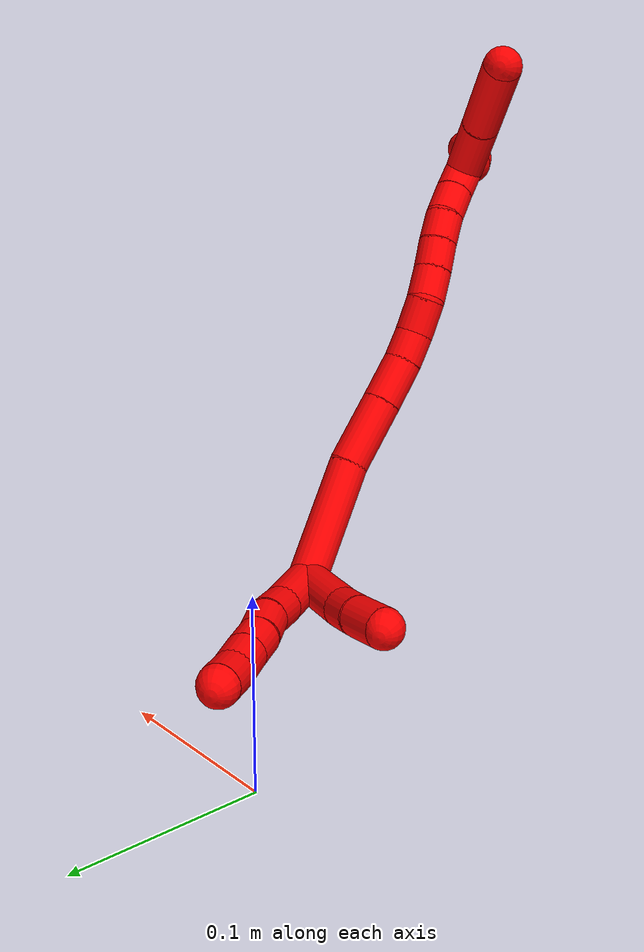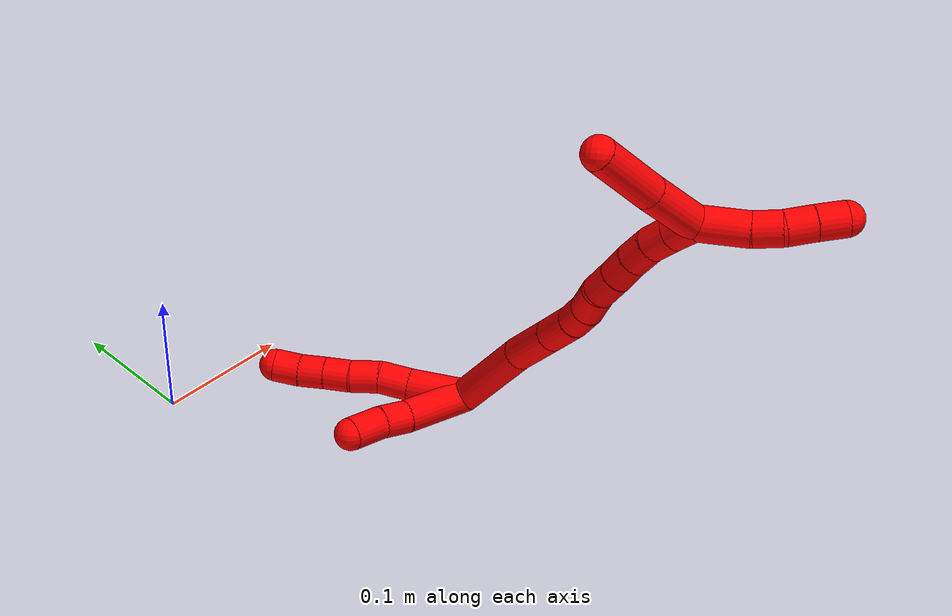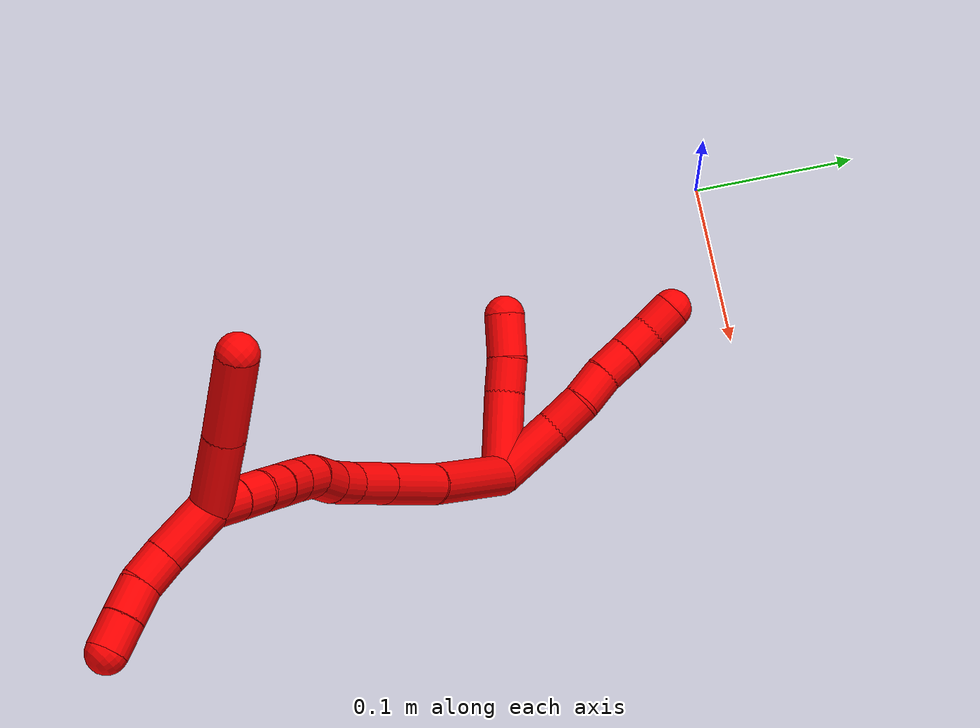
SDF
<sdf version="1.7">
 <world name="default">
  <model name="2">
   <static>0</static>
   <link name="2">
    <collision name="collision-cylinder-e_1_2_8">
     <pose>-0.001752 -0.000531 -0.021845 3.11728 -0.080015 -2.55191</pose>
     <geometry><cylinder><radius>0.0125</radius><length>0.043844</length></cylinder></geometry>
     <surface>
      <friction><ode><mu>1.16</mu><mu2>1.16</mu2><slip1>0</slip1><slip2>0</slip2></ode></friction>
      <contact><ode><kp>1e+06</kp><kd>1</kd><max_vel>0</max_vel><min_depth>0.001</min_depth></ode></contact>
     </surface>
    </collision>
    <visual name="visual-cylinder-e_1_2_8">
     <pose>-0.001752 -0.000531 -0.021845 3.11728 -0.080015 -2.55191</pose>
     <geometry><cylinder><radius>0.0125</radius><length>0.043844</length></cylinder></geometry>
     <material><ambient>1 0 0 1</ambient></material>
    </visual>
    <collision name="collision-cylinder-e_2_8_9">
     <pose>-0.004632 -0.002453 -0.055309 3.02251 -0.096045 -1.35702</pose>
     <geometry><cylinder><radius>0.0125</radius><length>0.023511</length></cylinder></geometry>
     <surface>
      <friction><ode><mu>1.16</mu><mu2>1.16</mu2><slip1>0</slip1><slip2>0</slip2></ode></friction>
      <contact><ode><kp>1e+06</kp><kd>1</kd><max_vel>0</max_vel><min_depth>0.001</min_depth></ode></contact>
     </surface>
    </collision>
    <visual name="visual-cylinder-e_2_8_9">
     <pose>-0.004632 -0.002453 -0.055309 3.02251 -0.096045 -1.35702</pose>
     <geometry><cylinder><radius>0.0125</radius><length>0.023511</length></cylinder></geometry>
     <material><ambient>1 0 0 1</ambient></material>
    </visual>
    <collision name="collision-cylinder-e_3_9_10">
     <pose>-0.004606 -0.004018 -0.078002 3.12574 0.10376 2.83863</pose>
     <geometry><cylinder><radius>0.0125</radius><length>0.022273</length></cylinder></geometry>
     <surface>
      <friction><ode><mu>1.16</mu><mu2>1.16</mu2><slip1>0</slip1><slip2>0</slip2></ode></friction>
      <contact><ode><kp>1e+06</kp><kd>1</kd><max_vel>0</max_vel><min_depth>0.001</min_depth></ode></contact>
     </surface>
    </collision>
    <visual name="visual-cylinder-e_3_9_10">
     <pose>-0.004606 -0.004018 -0.078002 3.12574 0.10376 2.83863</pose>
     <geometry><cylinder><radius>0.0125</radius><length>0.022273</length></cylinder></geometry>
     <material><ambient>1 0 0 1</ambient></material>
    </visual>
    <collision name="collision-cylinder-e_4_10_11">
     <pose>-0.00385 -0.003925 -0.099075 -3.1147 -0.03975 1.9522</pose>
     <geometry><cylinder><radius>0.0125</radius><length>0.020019</length></cylinder></geometry>
     <surface>
      <friction><ode><mu>1.16</mu><mu2>1.16</mu2><slip1>0</slip1><slip2>0</slip2></ode></friction>
      <contact><ode><kp>1e+06</kp><kd>1</kd><max_vel>0</max_vel><min_depth>0.001</min_depth></ode></contact>
     </surface>
    </collision>
    <visual name="visual-cylinder-e_4_10_11">
     <pose>-0.00385 -0.003925 -0.099075 -3.1147 -0.03975 1.9522</pose>
     <geometry><cylinder><radius>0.0125</radius><length>0.020019</length></cylinder></geometry>
     <material><ambient>1 0 0 1</ambient></material>
    </visual>
    <collision name="collision-cylinder-e_5_11_12">
     <pose>-0.004367 -0.0034 -0.119198 -3.11629 -0.011789 0.871964</pose>
     <geometry><cylinder><radius>0.0125</radius><length>0.020258</length></cylinder></geometry>
     <surface>
      <friction><ode><mu>1.16</mu><mu2>1.16</mu2><slip1>0</slip1><slip2>0</slip2></ode></friction>
      <contact><ode><kp>1e+06</kp><kd>1</kd><max_vel>0</max_vel><min_depth>0.001</min_depth></ode></contact>
     </surface>
    </collision>
    <visual name="visual-cylinder-e_5_11_12">
     <pose>-0.004367 -0.0034 -0.119198 -3.11629 -0.011789 0.871964</pose>
     <geometry><cylinder><radius>0.0125</radius><length>0.020258</length></cylinder></geometry>
     <material><ambient>1 0 0 1</ambient></material>
    </visual>
    <collision name="collision-cylinder-e_6_12_6">
     <pose>-0.005084 -0.004161 -0.139302 3.03995 -0.059514 -1.05887</pose>
     <geometry><cylinder><radius>0.0125</radius><length>0.020096</length></cylinder></geometry>
     <surface>
      <friction><ode><mu>1.16</mu><mu2>1.16</mu2><slip1>0</slip1><slip2>0</slip2></ode></friction>
      <contact><ode><kp>1e+06</kp><kd>1</kd><max_vel>0</max_vel><min_depth>0.001</min_depth></ode></contact>
     </surface>
    </collision>
    <visual name="visual-cylinder-e_6_12_6">
     <pose>-0.005084 -0.004161 -0.139302 3.03995 -0.059514 -1.05887</pose>
     <geometry><cylinder><radius>0.0125</radius><length>0.020096</length></cylinder></geometry>
     <material><ambient>1 0 0 1</ambient></material>
    </visual>
    <collision name="collision-cylinder-e_1_2_13">
     <pose>0.015598 -0.006624 -0.019203 2.80944 0.654854 2.22471</pose>
     <geometry><cylinder><radius>0.0125</radius><length>0.051222</length></cylinder></geometry>
     <surface>
      <friction><ode><mu>1.16</mu><mu2>1.16</mu2><slip1>0</slip1><slip2>0</slip2></ode></friction>
      <contact><ode><kp>1e+06</kp><kd>1</kd><max_vel>0</max_vel><min_depth>0.001</min_depth></ode></contact>
     </surface>
    </collision>
    <visual name="visual-cylinder-e_1_2_13">
     <pose>0.015598 -0.006624 -0.019203 2.80944 0.654854 2.22471</pose>
     <geometry><cylinder><radius>0.0125</radius><length>0.051222</length></cylinder></geometry>
     <material><ambient>1 0 0 1</ambient></material>
    </visual>
    <collision name="collision-cylinder-e_2_13_14">
     <pose>0.037052 -0.017273 -0.0467 2.68978 0.565881 1.80376</pose>
     <geometry><cylinder><radius>0.0125</radius><length>0.021843</length></cylinder></geometry>
     <surface>
      <friction><ode><mu>1.16</mu><mu2>1.16</mu2><slip1>0</slip1><slip2>0</slip2></ode></friction>
      <contact><ode><kp>1e+06</kp><kd>1</kd><max_vel>0</max_vel><min_depth>0.001</min_depth></ode></contact>
     </surface>
    </collision>
    <visual name="visual-cylinder-e_2_13_14">
     <pose>0.037052 -0.017273 -0.0467 2.68978 0.565881 1.80376</pose>
     <geometry><cylinder><radius>0.0125</radius><length>0.021843</length></cylinder></geometry>
     <material><ambient>1 0 0 1</ambient></material>
    </visual>
    <collision name="collision-cylinder-e_3_14_5">
     <pose>0.051721 -0.025979 -0.064037 2.66389 0.713355 1.98394</pose>
     <geometry><cylinder><radius>0.0125</radius><length>0.026934</length></cylinder></geometry>
     <surface>
      <friction><ode><mu>1.16</mu><mu2>1.16</mu2><slip1>0</slip1><slip2>0</slip2></ode></friction>
      <contact><ode><kp>1e+06</kp><kd>1</kd><max_vel>0</max_vel><min_depth>0.001</min_depth></ode></contact>
     </surface>
    </collision>
    <visual name="visual-cylinder-e_3_14_5">
     <pose>0.051721 -0.025979 -0.064037 2.66389 0.713355 1.98394</pose>
     <geometry><cylinder><radius>0.0125</radius><length>0.026934</length></cylinder></geometry>
     <material><ambient>1 0 0 1</ambient></material>
    </visual>
    <collision name="collision-cylinder-e_1_2_15">
     <pose>-0.002066 -0.031835 0.022512 0.955293 -0.052932 -0.027403</pose>
     <geometry><cylinder><radius>0.0125</radius><length>0.07809</length></cylinder></geometry>
     <surface>
      <friction><ode><mu>1.16</mu><mu2>1.16</mu2><slip1>0</slip1><slip2>0</slip2></ode></friction>
      <contact><ode><kp>1e+06</kp><kd>1</kd><max_vel>0</max_vel><min_depth>0.001</min_depth></ode></contact>
     </surface>
    </collision>
    <visual name="visual-cylinder-e_1_2_15">
     <pose>-0.002066 -0.031835 0.022512 0.955293 -0.052932 -0.027403</pose>
     <geometry><cylinder><radius>0.0125</radius><length>0.07809</length></cylinder></geometry>
     <material><ambient>1 0 0 1</ambient></material>
    </visual>
    <collision name="collision-cylinder-e_2_15_16">
     <pose>-0.002078 -0.082427 0.058102 0.961909 0.089543 0.046749</pose>
     <geometry><cylinder><radius>0.0125</radius><length>0.045917</length></cylinder></geometry>
     <surface>
      <friction><ode><mu>1.16</mu><mu2>1.16</mu2><slip1>0</slip1><slip2>0</slip2></ode></friction>
      <contact><ode><kp>1e+06</kp><kd>1</kd><max_vel>0</max_vel><min_depth>0.001</min_depth></ode></contact>
     </surface>
    </collision>
    <visual name="visual-cylinder-e_2_15_16">
     <pose>-0.002078 -0.082427 0.058102 0.961909 0.089543 0.046749</pose>
     <geometry><cylinder><radius>0.0125</radius><length>0.045917</length></cylinder></geometry>
     <material><ambient>1 0 0 1</ambient></material>
    </visual>
    <collision name="collision-cylinder-e_3_16_17">
     <pose>0.001174 -0.113667 0.079887 0.961832 0.078673 0.041065</pose>
     <geometry><cylinder><radius>0.0125</radius><length>0.030532</length></cylinder></geometry>
     <surface>
      <friction><ode><mu>1.16</mu><mu2>1.16</mu2><slip1>0</slip1><slip2>0</slip2></ode></friction>
      <contact><ode><kp>1e+06</kp><kd>1</kd><max_vel>0</max_vel><min_depth>0.001</min_depth></ode></contact>
     </surface>
    </collision>
    <visual name="visual-cylinder-e_3_16_17">
     <pose>0.001174 -0.113667 0.079887 0.961832 0.078673 0.041065</pose>
     <geometry><cylinder><radius>0.0125</radius><length>0.030532</length></cylinder></geometry>
     <material><ambient>1 0 0 1</ambient></material>
    </visual>
    <collision name="collision-cylinder-e_4_17_18">
     <pose>0.002384 -0.134896 0.093623 1.04876 0.001001 0.000579</pose>
     <geometry><cylinder><radius>0.0125</radius><length>0.02018</length></cylinder></geometry>
     <surface>
      <friction><ode><mu>1.16</mu><mu2>1.16</mu2><slip1>0</slip1><slip2>0</slip2></ode></friction>
      <contact><ode><kp>1e+06</kp><kd>1</kd><max_vel>0</max_vel><min_depth>0.001</min_depth></ode></contact>
     </surface>
    </collision>
    <visual name="visual-cylinder-e_4_17_18">
     <pose>0.002384 -0.134896 0.093623 1.04876 0.001001 0.000579</pose>
     <geometry><cylinder><radius>0.0125</radius><length>0.02018</length></cylinder></geometry>
     <material><ambient>1 0 0 1</ambient></material>
    </visual>
    <collision name="collision-cylinder-e_5_18_19">
     <pose>0.001974 -0.154645 0.102856 1.20602 -0.035704 -0.024586</pose>
     <geometry><cylinder><radius>0.0125</radius><length>0.02357</length></cylinder></geometry>
     <surface>
      <friction><ode><mu>1.16</mu><mu2>1.16</mu2><slip1>0</slip1><slip2>0</slip2></ode></friction>
      <contact><ode><kp>1e+06</kp><kd>1</kd><max_vel>0</max_vel><min_depth>0.001</min_depth></ode></contact>
     </surface>
    </collision>
    <visual name="visual-cylinder-e_5_18_19">
     <pose>0.001974 -0.154645 0.102856 1.20602 -0.035704 -0.024586</pose>
     <geometry><cylinder><radius>0.0125</radius><length>0.02357</length></cylinder></geometry>
     <material><ambient>1 0 0 1</ambient></material>
    </visual>
    <collision name="collision-cylinder-e_6_19_20">
     <pose>-0.000112 -0.174126 0.113039 0.956473 -0.159098 -0.082599</pose>
     <geometry><cylinder><radius>0.0125</radius><length>0.021018</length></cylinder></geometry>
     <surface>
      <friction><ode><mu>1.16</mu><mu2>1.16</mu2><slip1>0</slip1><slip2>0</slip2></ode></friction>
      <contact><ode><kp>1e+06</kp><kd>1</kd><max_vel>0</max_vel><min_depth>0.001</min_depth></ode></contact>
     </surface>
    </collision>
    <visual name="visual-cylinder-e_6_19_20">
     <pose>-0.000112 -0.174126 0.113039 0.956473 -0.159098 -0.082599</pose>
     <geometry><cylinder><radius>0.0125</radius><length>0.021018</length></cylinder></geometry>
     <material><ambient>1 0 0 1</ambient></material>
    </visual>
    <collision name="collision-cylinder-e_7_20_21">
     <pose>-0.003779 -0.190749 0.124626 0.967796 -0.199766 -0.105246</pose>
     <geometry><cylinder><radius>0.0125</radius><length>0.020175</length></cylinder></geometry>
     <surface>
      <friction><ode><mu>1.16</mu><mu2>1.16</mu2><slip1>0</slip1><slip2>0</slip2></ode></friction>
      <contact><ode><kp>1e+06</kp><kd>1</kd><max_vel>0</max_vel><min_depth>0.001</min_depth></ode></contact>
     </surface>
    </collision>
    <visual name="visual-cylinder-e_7_20_21">
     <pose>-0.003779 -0.190749 0.124626 0.967796 -0.199766 -0.105246</pose>
     <geometry><cylinder><radius>0.0125</radius><length>0.020175</length></cylinder></geometry>
     <material><ambient>1 0 0 1</ambient></material>
    </visual>
    <collision name="collision-cylinder-e_8_21_22">
     <pose>-0.007274 -0.206778 0.136251 0.918954 -0.149455 -0.074054</pose>
     <geometry><cylinder><radius>0.0125</radius><length>0.020062</length></cylinder></geometry>
     <surface>
      <friction><ode><mu>1.16</mu><mu2>1.16</mu2><slip1>0</slip1><slip2>0</slip2></ode></friction>
      <contact><ode><kp>1e+06</kp><kd>1</kd><max_vel>0</max_vel><min_depth>0.001</min_depth></ode></contact>
     </surface>
    </collision>
    <visual name="visual-cylinder-e_8_21_22">
     <pose>-0.007274 -0.206778 0.136251 0.918954 -0.149455 -0.074054</pose>
     <geometry><cylinder><radius>0.0125</radius><length>0.020062</length></cylinder></geometry>
     <material><ambient>1 0 0 1</ambient></material>
    </visual>
    <collision name="collision-cylinder-e_9_22_23">
     <pose>-0.009222 -0.221762 0.149406 0.782645 -0.045072 -0.018599</pose>
     <geometry><cylinder><radius>0.0125</radius><length>0.020154</length></cylinder></geometry>
     <surface>
      <friction><ode><mu>1.16</mu><mu2>1.16</mu2><slip1>0</slip1><slip2>0</slip2></ode></friction>
      <contact><ode><kp>1e+06</kp><kd>1</kd><max_vel>0</max_vel><min_depth>0.001</min_depth></ode></contact>
     </surface>
    </collision>
    <visual name="visual-cylinder-e_9_22_23">
     <pose>-0.009222 -0.221762 0.149406 0.782645 -0.045072 -0.018599</pose>
     <geometry><cylinder><radius>0.0125</radius><length>0.020154</length></cylinder></geometry>
     <material><ambient>1 0 0 1</ambient></material>
    </visual>
    <collision name="collision-cylinder-e_10_23_1">
     <pose>-0.009798 -0.235895 0.163862 0.765702 -0.012098 -0.004872</pose>
     <geometry><cylinder><radius>0.0125</radius><length>0.020302</length></cylinder></geometry>
     <surface>
      <friction><ode><mu>1.16</mu><mu2>1.16</mu2><slip1>0</slip1><slip2>0</slip2></ode></friction>
      <contact><ode><kp>1e+06</kp><kd>1</kd><max_vel>0</max_vel><min_depth>0.001</min_depth></ode></contact>
     </surface>
    </collision>
    <visual name="visual-cylinder-e_10_23_1">
     <pose>-0.009798 -0.235895 0.163862 0.765702 -0.012098 -0.004872</pose>
     <geometry><cylinder><radius>0.0125</radius><length>0.020302</length></cylinder></geometry>
     <material><ambient>1 0 0 1</ambient></material>
    </visual>
    <collision name="collision-cylinder-e_1_1_24">
     <pose>-0.007551 -0.261358 0.156797 2.23345 0.101033 0.206439</pose>
     <geometry><cylinder><radius>0.0125</radius><length>0.046992</length></cylinder></geometry>
     <surface>
      <friction><ode><mu>1.16</mu><mu2>1.16</mu2><slip1>0</slip1><slip2>0</slip2></ode></friction>
      <contact><ode><kp>1e+06</kp><kd>1</kd><max_vel>0</max_vel><min_depth>0.001</min_depth></ode></contact>
     </surface>
    </collision>
    <visual name="visual-cylinder-e_1_1_24">
     <pose>-0.007551 -0.261358 0.156797 2.23345 0.101033 0.206439</pose>
     <geometry><cylinder><radius>0.0125</radius><length>0.046992</length></cylinder></geometry>
     <material><ambient>1 0 0 1</ambient></material>
    </visual>
    <collision name="collision-cylinder-e_2_24_4">
     <pose>-0.002702 -0.301248 0.127062 2.1918 0.093704 0.181884</pose>
     <geometry><cylinder><radius>0.0125</radius><length>0.053008</length></cylinder></geometry>
     <surface>
      <friction><ode><mu>1.16</mu><mu2>1.16</mu2><slip1>0</slip1><slip2>0</slip2></ode></friction>
      <contact><ode><kp>1e+06</kp><kd>1</kd><max_vel>0</max_vel><min_depth>0.001</min_depth></ode></contact>
     </surface>
    </collision>
    <visual name="visual-cylinder-e_2_24_4">
     <pose>-0.002702 -0.301248 0.127062 2.1918 0.093704 0.181884</pose>
     <geometry><cylinder><radius>0.0125</radius><length>0.053008</length></cylinder></geometry>
     <material><ambient>1 0 0 1</ambient></material>
    </visual>
    <collision name="collision-cylinder-e_1_1_25">
     <pose>-0.010038 -0.241999 0.18966 -0.050267 -0.006328 0.000159</pose>
     <geometry><cylinder><radius>0.0125</radius><length>0.037011</length></cylinder></geometry>
     <surface>
      <friction><ode><mu>1.16</mu><mu2>1.16</mu2><slip1>0</slip1><slip2>0</slip2></ode></friction>
      <contact><ode><kp>1e+06</kp><kd>1</kd><max_vel>0</max_vel><min_depth>0.001</min_depth></ode></contact>
     </surface>
    </collision>
    <visual name="visual-cylinder-e_1_1_25">
     <pose>-0.010038 -0.241999 0.18966 -0.050267 -0.006328 0.000159</pose>
     <geometry><cylinder><radius>0.0125</radius><length>0.037011</length></cylinder></geometry>
     <material><ambient>1 0 0 1</ambient></material>
    </visual>
    <collision name="collision-cylinder-e_2_25_26">
     <pose>-0.011488 -0.241533 0.218452 0.044897 -0.1284 -0.002887</pose>
     <geometry><cylinder><radius>0.0125</radius><length>0.020812</length></cylinder></geometry>
     <surface>
      <friction><ode><mu>1.16</mu><mu2>1.16</mu2><slip1>0</slip1><slip2>0</slip2></ode></friction>
      <contact><ode><kp>1e+06</kp><kd>1</kd><max_vel>0</max_vel><min_depth>0.001</min_depth></ode></contact>
     </surface>
    </collision>
    <visual name="visual-cylinder-e_2_25_26">
     <pose>-0.011488 -0.241533 0.218452 0.044897 -0.1284 -0.002887</pose>
     <geometry><cylinder><radius>0.0125</radius><length>0.020812</length></cylinder></geometry>
     <material><ambient>1 0 0 1</ambient></material>
    </visual>
    <collision name="collision-cylinder-e_3_26_27">
     <pose>-0.016297 -0.241609 0.238627 -0.039205 -0.33863 0.006703</pose>
     <geometry><cylinder><radius>0.0125</radius><length>0.020934</length></cylinder></geometry>
     <surface>
      <friction><ode><mu>1.16</mu><mu2>1.16</mu2><slip1>0</slip1><slip2>0</slip2></ode></friction>
      <contact><ode><kp>1e+06</kp><kd>1</kd><max_vel>0</max_vel><min_depth>0.001</min_depth></ode></contact>
     </surface>
    </collision>
    <visual name="visual-cylinder-e_3_26_27">
     <pose>-0.016297 -0.241609 0.238627 -0.039205 -0.33863 0.006703</pose>
     <geometry><cylinder><radius>0.0125</radius><length>0.020934</length></cylinder></geometry>
     <material><ambient>1 0 0 1</ambient></material>
    </visual>
    <collision name="collision-cylinder-e_4_27_3">
     <pose>-0.023259 -0.240358 0.258488 -0.086268 -0.334269 0.014563</pose>
     <geometry><cylinder><radius>0.0125</radius><length>0.021243</length></cylinder></geometry>
     <surface>
      <friction><ode><mu>1.16</mu><mu2>1.16</mu2><slip1>0</slip1><slip2>0</slip2></ode></friction>
      <contact><ode><kp>1e+06</kp><kd>1</kd><max_vel>0</max_vel><min_depth>0.001</min_depth></ode></contact>
     </surface>
    </collision>
    <visual name="visual-cylinder-e_4_27_3">
     <pose>-0.023259 -0.240358 0.258488 -0.086268 -0.334269 0.014563</pose>
     <geometry><cylinder><radius>0.0125</radius><length>0.021243</length></cylinder></geometry>
     <material><ambient>1 0 0 1</ambient></material>
    </visual>
    <collision name="collision-sphere-3">
     <pose>-0.026744 -0.239493 0.268485 0 -0 0</pose>
     <geometry><sphere><radius>0.0125</radius></sphere></geometry>
     <surface>
      <friction><ode><mu>1.16</mu><mu2>1.16</mu2><slip1>0</slip1><slip2>0</slip2></ode></friction>
      <contact><ode><kp>1e+06</kp><kd>1</kd><max_vel>0</max_vel><min_depth>0.001</min_depth></ode></contact>
     </surface>
    </collision>
    <visual name="visual-sphere-3">
     <pose>-0.026744 -0.239493 0.268485 0 -0 0</pose>
     <geometry><sphere><radius>0.0125</radius></sphere></geometry>
     <material><ambient>1 0 0 1</ambient></material>
    </visual>
    <collision name="collision-sphere-27">
     <pose>-0.019775 -0.241222 0.248492 0 -0 0</pose>
     <geometry><sphere><radius>0.0125</radius></sphere></geometry>
     <surface>
      <friction><ode><mu>1.16</mu><mu2>1.16</mu2><slip1>0</slip1><slip2>0</slip2></ode></friction>
      <contact><ode><kp>1e+06</kp><kd>1</kd><max_vel>0</max_vel><min_depth>0.001</min_depth></ode></contact>
     </surface>
    </collision>
    <visual name="visual-sphere-27">
     <pose>-0.019775 -0.241222 0.248492 0 -0 0</pose>
     <geometry><sphere><radius>0.0125</radius></sphere></geometry>
     <material><ambient>1 0 0 1</ambient></material>
    </visual>
    <collision name="collision-sphere-26">
     <pose>-0.01282 -0.241996 0.228762 0 -0 0</pose>
     <geometry><sphere><radius>0.0125</radius></sphere></geometry>
     <surface>
      <friction><ode><mu>1.16</mu><mu2>1.16</mu2><slip1>0</slip1><slip2>0</slip2></ode></friction>
      <contact><ode><kp>1e+06</kp><kd>1</kd><max_vel>0</max_vel><min_depth>0.001</min_depth></ode></contact>
     </surface>
    </collision>
    <visual name="visual-sphere-26">
     <pose>-0.01282 -0.241996 0.228762 0 -0 0</pose>
     <geometry><sphere><radius>0.0125</radius></sphere></geometry>
     <material><ambient>1 0 0 1</ambient></material>
    </visual>
    <collision name="collision-sphere-25">
     <pose>-0.010155 -0.24107 0.208142 0 -0 0</pose>
     <geometry><sphere><radius>0.0125</radius></sphere></geometry>
     <surface>
      <friction><ode><mu>1.16</mu><mu2>1.16</mu2><slip1>0</slip1><slip2>0</slip2></ode></friction>
      <contact><ode><kp>1e+06</kp><kd>1</kd><max_vel>0</max_vel><min_depth>0.001</min_depth></ode></contact>
     </surface>
    </collision>
    <visual name="visual-sphere-25">
     <pose>-0.010155 -0.24107 0.208142 0 -0 0</pose>
     <geometry><sphere><radius>0.0125</radius></sphere></geometry>
     <material><ambient>1 0 0 1</ambient></material>
    </visual>
    <collision name="collision-sphere-4">
     <pose>-0.000222 -0.322709 0.111709 0 -0 0</pose>
     <geometry><sphere><radius>0.0125</radius></sphere></geometry>
     <surface>
      <friction><ode><mu>1.16</mu><mu2>1.16</mu2><slip1>0</slip1><slip2>0</slip2></ode></friction>
      <contact><ode><kp>1e+06</kp><kd>1</kd><max_vel>0</max_vel><min_depth>0.001</min_depth></ode></contact>
     </surface>
    </collision>
    <visual name="visual-sphere-4">
     <pose>-0.000222 -0.322709 0.111709 0 -0 0</pose>
     <geometry><sphere><radius>0.0125</radius></sphere></geometry>
     <material><ambient>1 0 0 1</ambient></material>
    </visual>
    <collision name="collision-sphere-24">
     <pose>-0.005182 -0.279787 0.142416 0 -0 0</pose>
     <geometry><sphere><radius>0.0125</radius></sphere></geometry>
     <surface>
      <friction><ode><mu>1.16</mu><mu2>1.16</mu2><slip1>0</slip1><slip2>0</slip2></ode></friction>
      <contact><ode><kp>1e+06</kp><kd>1</kd><max_vel>0</max_vel><min_depth>0.001</min_depth></ode></contact>
     </surface>
    </collision>
    <visual name="visual-sphere-24">
     <pose>-0.005182 -0.279787 0.142416 0 -0 0</pose>
     <geometry><sphere><radius>0.0125</radius></sphere></geometry>
     <material><ambient>1 0 0 1</ambient></material>
    </visual>
    <collision name="collision-sphere-1">
     <pose>-0.009921 -0.242929 0.171179 0 -0 0</pose>
     <geometry><sphere><radius>0.0125</radius></sphere></geometry>
     <surface>
      <friction><ode><mu>1.16</mu><mu2>1.16</mu2><slip1>0</slip1><slip2>0</slip2></ode></friction>
      <contact><ode><kp>1e+06</kp><kd>1</kd><max_vel>0</max_vel><min_depth>0.001</min_depth></ode></contact>
     </surface>
    </collision>
    <visual name="visual-sphere-1">
     <pose>-0.009921 -0.242929 0.171179 0 -0 0</pose>
     <geometry><sphere><radius>0.0125</radius></sphere></geometry>
     <material><ambient>1 0 0 1</ambient></material>
    </visual>
    <collision name="collision-sphere-23">
     <pose>-0.009676 -0.22886 0.156544 0 -0 0</pose>
     <geometry><sphere><radius>0.0125</radius></sphere></geometry>
     <surface>
      <friction><ode><mu>1.16</mu><mu2>1.16</mu2><slip1>0</slip1><slip2>0</slip2></ode></friction>
      <contact><ode><kp>1e+06</kp><kd>1</kd><max_vel>0</max_vel><min_depth>0.001</min_depth></ode></contact>
     </surface>
    </collision>
    <visual name="visual-sphere-23">
     <pose>-0.009676 -0.22886 0.156544 0 -0 0</pose>
     <geometry><sphere><radius>0.0125</radius></sphere></geometry>
     <material><ambient>1 0 0 1</ambient></material>
    </visual>
    <collision name="collision-sphere-22">
     <pose>-0.008768 -0.214663 0.142269 0 -0 0</pose>
     <geometry><sphere><radius>0.0125</radius></sphere></geometry>
     <surface>
      <friction><ode><mu>1.16</mu><mu2>1.16</mu2><slip1>0</slip1><slip2>0</slip2></ode></friction>
      <contact><ode><kp>1e+06</kp><kd>1</kd><max_vel>0</max_vel><min_depth>0.001</min_depth></ode></contact>
     </surface>
    </collision>
    <visual name="visual-sphere-22">
     <pose>-0.008768 -0.214663 0.142269 0 -0 0</pose>
     <geometry><sphere><radius>0.0125</radius></sphere></geometry>
     <material><ambient>1 0 0 1</ambient></material>
    </visual>
    <collision name="collision-sphere-21">
     <pose>-0.00578 -0.198892 0.130234 0 -0 0</pose>
     <geometry><sphere><radius>0.0125</radius></sphere></geometry>
     <surface>
      <friction><ode><mu>1.16</mu><mu2>1.16</mu2><slip1>0</slip1><slip2>0</slip2></ode></friction>
      <contact><ode><kp>1e+06</kp><kd>1</kd><max_vel>0</max_vel><min_depth>0.001</min_depth></ode></contact>
     </surface>
    </collision>
    <visual name="visual-sphere-21">
     <pose>-0.00578 -0.198892 0.130234 0 -0 0</pose>
     <geometry><sphere><radius>0.0125</radius></sphere></geometry>
     <material><ambient>1 0 0 1</ambient></material>
    </visual>
    <collision name="collision-sphere-12">
     <pose>-0.004487 -0.003144 -0.129323 0 -0 0</pose>
     <geometry><sphere><radius>0.0125</radius></sphere></geometry>
     <surface>
      <friction><ode><mu>1.16</mu><mu2>1.16</mu2><slip1>0</slip1><slip2>0</slip2></ode></friction>
      <contact><ode><kp>1e+06</kp><kd>1</kd><max_vel>0</max_vel><min_depth>0.001</min_depth></ode></contact>
     </surface>
    </collision>
    <visual name="visual-sphere-12">
     <pose>-0.004487 -0.003144 -0.129323 0 -0 0</pose>
     <geometry><sphere><radius>0.0125</radius></sphere></geometry>
     <material><ambient>1 0 0 1</ambient></material>
    </visual>
    <collision name="collision-sphere-11">
     <pose>-0.004248 -0.003656 -0.109073 0 -0 0</pose>
     <geometry><sphere><radius>0.0125</radius></sphere></geometry>
     <surface>
      <friction><ode><mu>1.16</mu><mu2>1.16</mu2><slip1>0</slip1><slip2>0</slip2></ode></friction>
      <contact><ode><kp>1e+06</kp><kd>1</kd><max_vel>0</max_vel><min_depth>0.001</min_depth></ode></contact>
     </surface>
    </collision>
    <visual name="visual-sphere-11">
     <pose>-0.004248 -0.003656 -0.109073 0 -0 0</pose>
     <geometry><sphere><radius>0.0125</radius></sphere></geometry>
     <material><ambient>1 0 0 1</ambient></material>
    </visual>
    <collision name="collision-sphere-10">
     <pose>-0.003452 -0.004194 -0.089077 0 -0 0</pose>
     <geometry><sphere><radius>0.0125</radius></sphere></geometry>
     <surface>
      <friction><ode><mu>1.16</mu><mu2>1.16</mu2><slip1>0</slip1><slip2>0</slip2></ode></friction>
      <contact><ode><kp>1e+06</kp><kd>1</kd><max_vel>0</max_vel><min_depth>0.001</min_depth></ode></contact>
     </surface>
    </collision>
    <visual name="visual-sphere-10">
     <pose>-0.003452 -0.004194 -0.089077 0 -0 0</pose>
     <geometry><sphere><radius>0.0125</radius></sphere></geometry>
     <material><ambient>1 0 0 1</ambient></material>
    </visual>
    <collision name="collision-sphere-9">
     <pose>-0.005759 -0.003843 -0.066927 0 -0 0</pose>
     <geometry><sphere><radius>0.0125</radius></sphere></geometry>
     <surface>
      <friction><ode><mu>1.16</mu><mu2>1.16</mu2><slip1>0</slip1><slip2>0</slip2></ode></friction>
      <contact><ode><kp>1e+06</kp><kd>1</kd><max_vel>0</max_vel><min_depth>0.001</min_depth></ode></contact>
     </surface>
    </collision>
    <visual name="visual-sphere-9">
     <pose>-0.005759 -0.003843 -0.066927 0 -0 0</pose>
     <geometry><sphere><radius>0.0125</radius></sphere></geometry>
     <material><ambient>1 0 0 1</ambient></material>
    </visual>
    <collision name="collision-sphere-2">
     <geometry><sphere><radius>0.0125</radius></sphere></geometry>
     <surface>
      <friction><ode><mu>1.16</mu><mu2>1.16</mu2><slip1>0</slip1><slip2>0</slip2></ode></friction>
      <contact><ode><kp>1e+06</kp><kd>1</kd><max_vel>0</max_vel><min_depth>0.001</min_depth></ode></contact>
     </surface>
    </collision>
    <visual name="visual-sphere-2">
     <geometry><sphere><radius>0.0125</radius></sphere></geometry>
     <material><ambient>1 0 0 1</ambient></material>
    </visual>
    <collision name="collision-sphere-19">
     <pose>0.001553 -0.165647 0.107058 0 -0 0</pose>
     <geometry><sphere><radius>0.0125</radius></sphere></geometry>
     <surface>
      <friction><ode><mu>1.16</mu><mu2>1.16</mu2><slip1>0</slip1><slip2>0</slip2></ode></friction>
      <contact><ode><kp>1e+06</kp><kd>1</kd><max_vel>0</max_vel><min_depth>0.001</min_depth></ode></contact>
     </surface>
    </collision>
    <visual name="visual-sphere-19">
     <pose>0.001553 -0.165647 0.107058 0 -0 0</pose>
     <geometry><sphere><radius>0.0125</radius></sphere></geometry>
     <material><ambient>1 0 0 1</ambient></material>
    </visual>
    <collision name="collision-sphere-8">
     <pose>-0.003504 -0.001062 -0.043691 0 -0 0</pose>
     <geometry><sphere><radius>0.0125</radius></sphere></geometry>
     <surface>
      <friction><ode><mu>1.16</mu><mu2>1.16</mu2><slip1>0</slip1><slip2>0</slip2></ode></friction>
      <contact><ode><kp>1e+06</kp><kd>1</kd><max_vel>0</max_vel><min_depth>0.001</min_depth></ode></contact>
     </surface>
    </collision>
    <visual name="visual-sphere-8">
     <pose>-0.003504 -0.001062 -0.043691 0 -0 0</pose>
     <geometry><sphere><radius>0.0125</radius></sphere></geometry>
     <material><ambient>1 0 0 1</ambient></material>
    </visual>
    <collision name="collision-sphere-6">
     <pose>-0.005682 -0.005179 -0.14928 0 -0 0</pose>
     <geometry><sphere><radius>0.0125</radius></sphere></geometry>
     <surface>
      <friction><ode><mu>1.16</mu><mu2>1.16</mu2><slip1>0</slip1><slip2>0</slip2></ode></friction>
      <contact><ode><kp>1e+06</kp><kd>1</kd><max_vel>0</max_vel><min_depth>0.001</min_depth></ode></contact>
     </surface>
    </collision>
    <visual name="visual-sphere-6">
     <pose>-0.005682 -0.005179 -0.14928 0 -0 0</pose>
     <geometry><sphere><radius>0.0125</radius></sphere></geometry>
     <material><ambient>1 0 0 1</ambient></material>
    </visual>
    <collision name="collision-sphere-13">
     <pose>0.031197 -0.013248 -0.038406 0 -0 0</pose>
     <geometry><sphere><radius>0.0125</radius></sphere></geometry>
     <surface>
      <friction><ode><mu>1.16</mu><mu2>1.16</mu2><slip1>0</slip1><slip2>0</slip2></ode></friction>
      <contact><ode><kp>1e+06</kp><kd>1</kd><max_vel>0</max_vel><min_depth>0.001</min_depth></ode></contact>
     </surface>
    </collision>
    <visual name="visual-sphere-13">
     <pose>0.031197 -0.013248 -0.038406 0 -0 0</pose>
     <geometry><sphere><radius>0.0125</radius></sphere></geometry>
     <material><ambient>1 0 0 1</ambient></material>
    </visual>
    <collision name="collision-sphere-14">
     <pose>0.042908 -0.021298 -0.054994 0 -0 0</pose>
     <geometry><sphere><radius>0.0125</radius></sphere></geometry>
     <surface>
      <friction><ode><mu>1.16</mu><mu2>1.16</mu2><slip1>0</slip1><slip2>0</slip2></ode></friction>
      <contact><ode><kp>1e+06</kp><kd>1</kd><max_vel>0</max_vel><min_depth>0.001</min_depth></ode></contact>
     </surface>
    </collision>
    <visual name="visual-sphere-14">
     <pose>0.042908 -0.021298 -0.054994 0 -0 0</pose>
     <geometry><sphere><radius>0.0125</radius></sphere></geometry>
     <material><ambient>1 0 0 1</ambient></material>
    </visual>
    <collision name="collision-sphere-5">
     <pose>0.060533 -0.030661 -0.073081 0 -0 0</pose>
     <geometry><sphere><radius>0.0125</radius></sphere></geometry>
     <surface>
      <friction><ode><mu>1.16</mu><mu2>1.16</mu2><slip1>0</slip1><slip2>0</slip2></ode></friction>
      <contact><ode><kp>1e+06</kp><kd>1</kd><max_vel>0</max_vel><min_depth>0.001</min_depth></ode></contact>
     </surface>
    </collision>
    <visual name="visual-sphere-5">
     <pose>0.060533 -0.030661 -0.073081 0 -0 0</pose>
     <geometry><sphere><radius>0.0125</radius></sphere></geometry>
     <material><ambient>1 0 0 1</ambient></material>
    </visual>
    <collision name="collision-sphere-15">
     <pose>-0.004132 -0.06367 0.045023 0 -0 0</pose>
     <geometry><sphere><radius>0.0125</radius></sphere></geometry>
     <surface>
      <friction><ode><mu>1.16</mu><mu2>1.16</mu2><slip1>0</slip1><slip2>0</slip2></ode></friction>
      <contact><ode><kp>1e+06</kp><kd>1</kd><max_vel>0</max_vel><min_depth>0.001</min_depth></ode></contact>
     </surface>
    </collision>
    <visual name="visual-sphere-15">
     <pose>-0.004132 -0.06367 0.045023 0 -0 0</pose>
     <geometry><sphere><radius>0.0125</radius></sphere></geometry>
     <material><ambient>1 0 0 1</ambient></material>
    </visual>
    <collision name="collision-sphere-16">
     <pose>-2.5e-05 -0.101184 0.071181 0 -0 0</pose>
     <geometry><sphere><radius>0.0125</radius></sphere></geometry>
     <surface>
      <friction><ode><mu>1.16</mu><mu2>1.16</mu2><slip1>0</slip1><slip2>0</slip2></ode></friction>
      <contact><ode><kp>1e+06</kp><kd>1</kd><max_vel>0</max_vel><min_depth>0.001</min_depth></ode></contact>
     </surface>
    </collision>
    <visual name="visual-sphere-16">
     <pose>-2.5e-05 -0.101184 0.071181 0 -0 0</pose>
     <geometry><sphere><radius>0.0125</radius></sphere></geometry>
     <material><ambient>1 0 0 1</ambient></material>
    </visual>
    <collision name="collision-sphere-17">
     <pose>0.002374 -0.126151 0.088592 0 -0 0</pose>
     <geometry><sphere><radius>0.0125</radius></sphere></geometry>
     <surface>
      <friction><ode><mu>1.16</mu><mu2>1.16</mu2><slip1>0</slip1><slip2>0</slip2></ode></friction>
      <contact><ode><kp>1e+06</kp><kd>1</kd><max_vel>0</max_vel><min_depth>0.001</min_depth></ode></contact>
     </surface>
    </collision>
    <visual name="visual-sphere-17">
     <pose>0.002374 -0.126151 0.088592 0 -0 0</pose>
     <geometry><sphere><radius>0.0125</radius></sphere></geometry>
     <material><ambient>1 0 0 1</ambient></material>
    </visual>
    <collision name="collision-sphere-18">
     <pose>0.002394 -0.143642 0.098655 0 -0 0</pose>
     <geometry><sphere><radius>0.0125</radius></sphere></geometry>
     <surface>
      <friction><ode><mu>1.16</mu><mu2>1.16</mu2><slip1>0</slip1><slip2>0</slip2></ode></friction>
      <contact><ode><kp>1e+06</kp><kd>1</kd><max_vel>0</max_vel><min_depth>0.001</min_depth></ode></contact>
     </surface>
    </collision>
    <visual name="visual-sphere-18">
     <pose>0.002394 -0.143642 0.098655 0 -0 0</pose>
     <geometry><sphere><radius>0.0125</radius></sphere></geometry>
     <material><ambient>1 0 0 1</ambient></material>
    </visual>
    <collision name="collision-sphere-20">
     <pose>-0.001777 -0.182605 0.119019 0 -0 0</pose>
     <geometry><sphere><radius>0.0125</radius></sphere></geometry>
     <surface>
      <friction><ode><mu>1.16</mu><mu2>1.16</mu2><slip1>0</slip1><slip2>0</slip2></ode></friction>
      <contact><ode><kp>1e+06</kp><kd>1</kd><max_vel>0</max_vel><min_depth>0.001</min_depth></ode></contact>
     </surface>
    </collision>
    <visual name="visual-sphere-20">
     <pose>-0.001777 -0.182605 0.119019 0 -0 0</pose>
     <geometry><sphere><radius>0.0125</radius></sphere></geometry>
     <material><ambient>1 0 0 1</ambient></material>
    </visual>
    <inertial>
     <pose>-0.000312 -0.121652 0.061833 0 -0 0</pose>
     <mass>0.75</mass>
     <inertia><ixx>0.0001</ixx><ixy>0</ixy><ixz>0</ixz><iyy>3.7e-05</iyy><iyz>0</iyz><izz>7e-05</izz></inertia>
    </inertial>
   </link>
   <pose>0.157786 -0.158187 0.012465 -1.53556 0.308871 -2.52679</pose>
  </model>
 </world>
</sdf>
